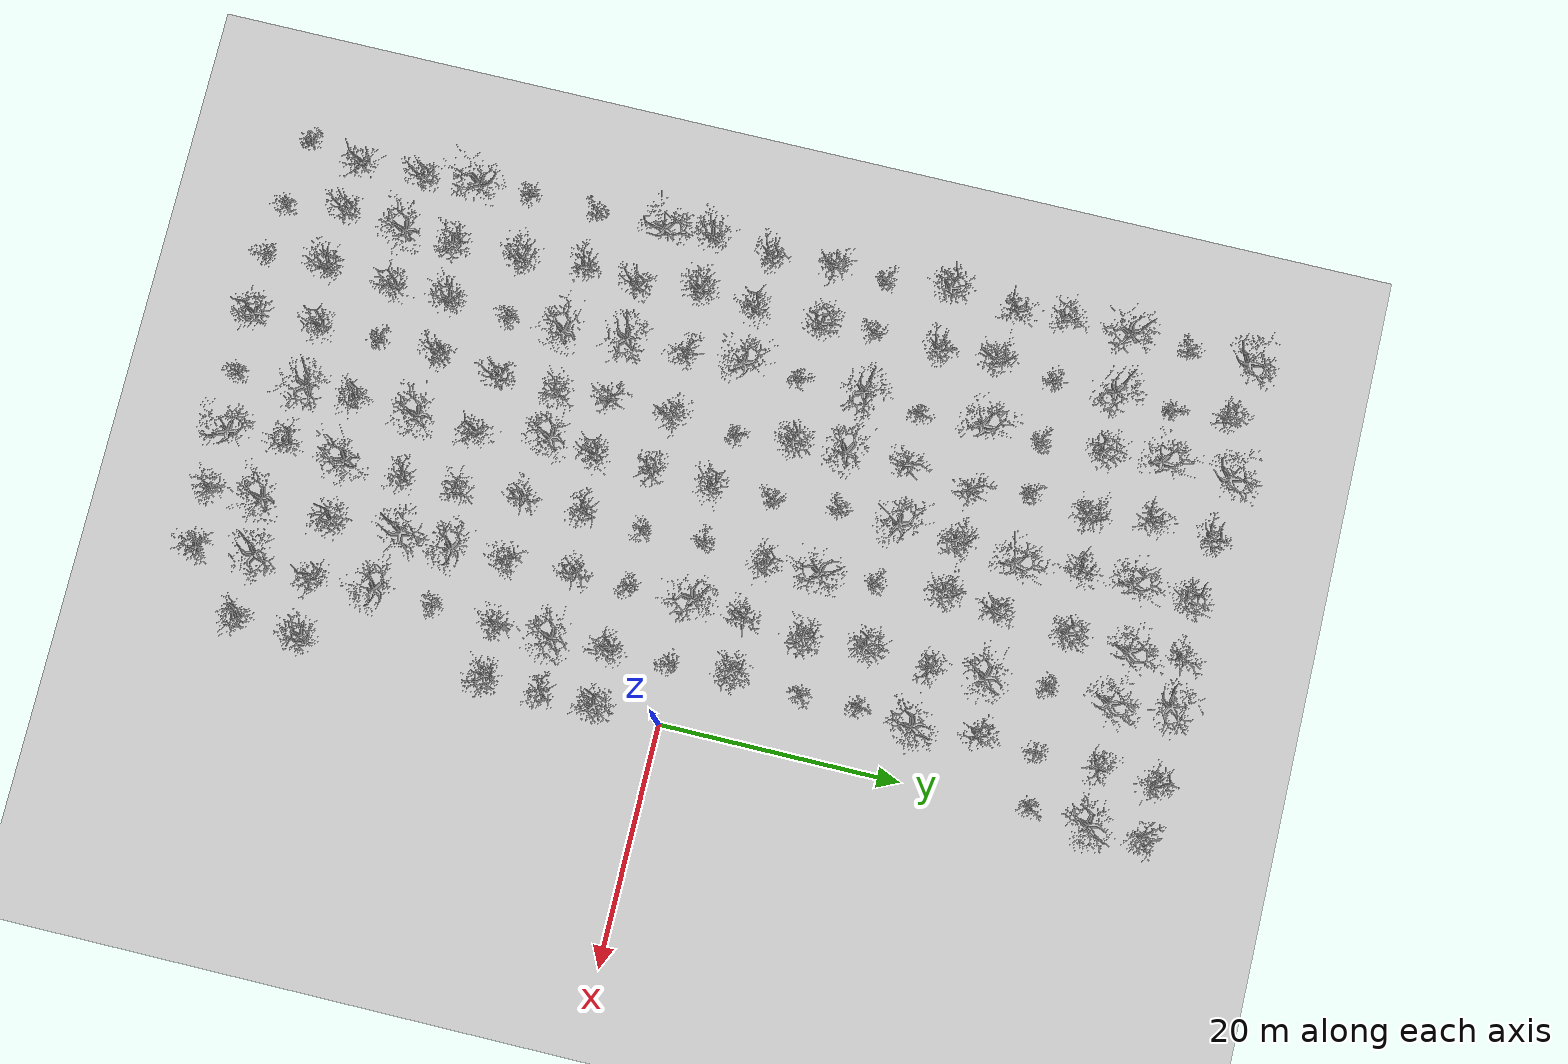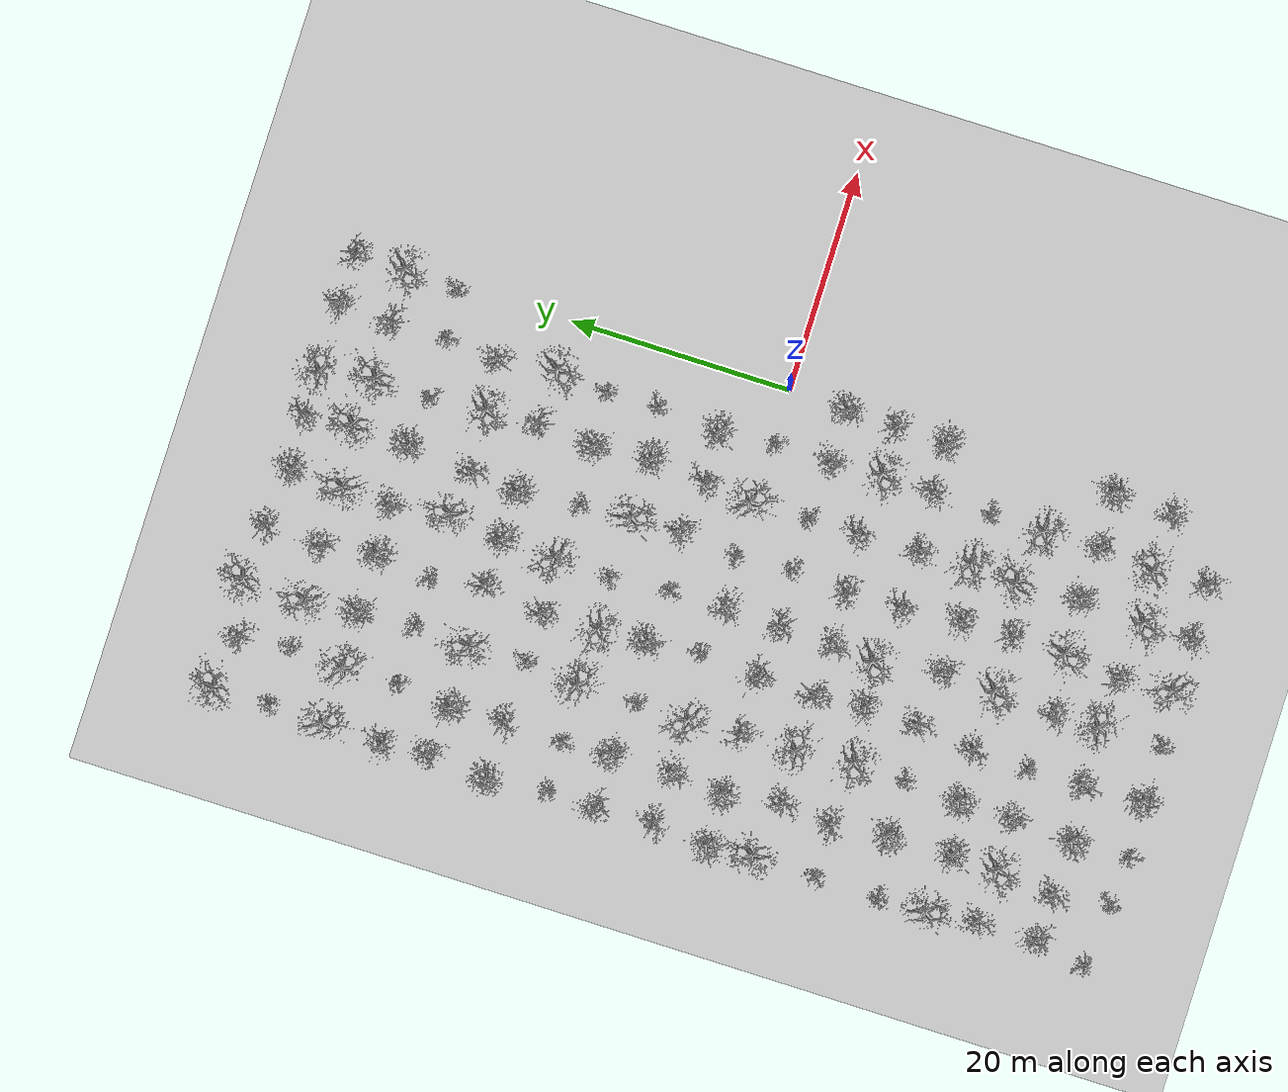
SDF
<sdf version="1.6">
 <world name="random_flat_forest">
  <include><uri>model://sun</uri></include>
  <model name="ground_plane">
   <static>true</static>
   <link name="link">
    <collision name="collision">
     <geometry><plane><normal>0 0 1</normal><size>100 100</size></plane></geometry>
    </collision>
    <visual name="visual">
     <geometry><plane><normal>0 0 1</normal><size>100 100</size></plane></geometry>
     <material>
      <script><uri>file://media/materials/scripts/gazebo.material</uri><name>Gazebo/Gray</name></script>
     </material>
    </visual>
   </link>
  </model>
  <include>
   <uri>model://random_tree_4</uri>
   <name>tree_0</name>
   <pose>-40.26 -39.60 0 0 0 6.20</pose>
   <scale>1.03 1.12 0.95</scale>
  </include>
  <include>
   <uri>model://random_tree_2</uri>
   <name>tree_1</name>
   <pose>-39.56 -34.91 0 0 0 2.53</pose>
   <scale>1.15 1.17 1.07</scale>
  </include>
  <include>
   <uri>model://random_tree_1</uri>
   <name>tree_2</name>
   <pose>-39.42 -29.65 0 0 0 5.63</pose>
   <scale>0.94 0.86 0.94</scale>
  </include>
  <include>
   <uri>model://random_tree_3</uri>
   <name>tree_3</name>
   <pose>-40.00 -25.00 0 0 0 4.07</pose>
   <scale>1.05 1.09 1.10</scale>
  </include>
  <include>
   <uri>model://random_tree_4</uri>
   <name>tree_4</name>
   <pose>-40.22 -20.73 0 0 0 3.93</pose>
   <scale>1.14 1.17 1.03</scale>
  </include>
  <include>
   <uri>model://random_tree_4</uri>
   <name>tree_5</name>
   <pose>-39.88 -14.86 0 0 0 1.59</pose>
   <scale>1.01 0.93 1.12</scale>
  </include>
  <include>
   <uri>model://random_tree_3</uri>
   <name>tree_6</name>
   <pose>-39.82 -9.19 0 0 0 0.88</pose>
   <scale>0.95 0.96 1.01</scale>
  </include>
  <include>
   <uri>model://random_tree_0</uri>
   <name>tree_7</name>
   <pose>-40.21 -5.08 0 0 0 0.79</pose>
   <scale>1.06 0.99 1.15</scale>
  </include>
  <include>
   <uri>model://random_tree_1</uri>
   <name>tree_8</name>
   <pose>-39.66 -0.11 0 0 0 4.91</pose>
   <scale>1.14 1.24 1.07</scale>
  </include>
  <include>
   <uri>model://random_tree_2</uri>
   <name>tree_9</name>
   <pose>-40.19 5.23 0 0 0 2.98</pose>
   <scale>0.92 0.89 1.15</scale>
  </include>
  <include>
   <uri>model://random_tree_4</uri>
   <name>tree_10</name>
   <pose>-39.77 9.55 0 0 0 0.28</pose>
   <scale>1.07 1.13 1.10</scale>
  </include>
  <include>
   <uri>model://random_tree_0</uri>
   <name>tree_11</name>
   <pose>-40.49 14.92 0 0 0 4.00</pose>
   <scale>0.94 0.99 1.04</scale>
  </include>
  <include>
   <uri>model://random_tree_2</uri>
   <name>tree_12</name>
   <pose>-40.05 20.74 0 0 0 2.21</pose>
   <scale>0.98 0.98 1.09</scale>
  </include>
  <include>
   <uri>model://random_tree_2</uri>
   <name>tree_13</name>
   <pose>-40.31 24.60 0 0 0 4.30</pose>
   <scale>1.04 1.12 0.93</scale>
  </include>
  <include>
   <uri>model://random_tree_3</uri>
   <name>tree_14</name>
   <pose>-40.16 30.14 0 0 0 4.40</pose>
   <scale>1.15 1.09 0.97</scale>
  </include>
  <include>
   <uri>model://random_tree_4</uri>
   <name>tree_15</name>
   <pose>-39.87 35.20 0 0 0 1.45</pose>
   <scale>1.20 1.19 1.04</scale>
  </include>
  <include>
   <uri>model://random_tree_3</uri>
   <name>tree_16</name>
   <pose>-40.06 40.10 0 0 0 0.04</pose>
   <scale>0.94 0.97 1.03</scale>
  </include>
  <include>
   <uri>model://random_tree_4</uri>
   <name>tree_17</name>
   <pose>-34.58 -40.25 0 0 0 4.76</pose>
   <scale>1.14 1.14 1.01</scale>
  </include>
  <include>
   <uri>model://random_tree_1</uri>
   <name>tree_18</name>
   <pose>-35.24 -35.19 0 0 0 5.52</pose>
   <scale>1.18 1.14 1.14</scale>
  </include>
  <include>
   <uri>model://random_tree_3</uri>
   <name>tree_19</name>
   <pose>-34.59 -29.89 0 0 0 3.06</pose>
   <scale>0.93 0.94 1.19</scale>
  </include>
  <include>
   <uri>model://random_tree_0</uri>
   <name>tree_20</name>
   <pose>-34.52 -25.85 0 0 0 3.23</pose>
   <scale>1.14 1.23 1.11</scale>
  </include>
  <include>
   <uri>model://random_tree_0</uri>
   <name>tree_21</name>
   <pose>-34.60 -19.95 0 0 0 0.23</pose>
   <scale>1.18 1.26 0.98</scale>
  </include>
  <include>
   <uri>model://random_tree_1</uri>
   <name>tree_22</name>
   <pose>-35.20 -14.80 0 0 0 4.58</pose>
   <scale>1.16 1.17 0.93</scale>
  </include>
  <include>
   <uri>model://random_tree_1</uri>
   <name>tree_23</name>
   <pose>-34.65 -10.28 0 0 0 5.40</pose>
   <scale>1.04 1.10 1.07</scale>
  </include>
  <include>
   <uri>model://random_tree_0</uri>
   <name>tree_24</name>
   <pose>-35.52 -5.01 0 0 0 0.20</pose>
   <scale>0.94 0.85 1.18</scale>
  </include>
  <include>
   <uri>model://random_tree_2</uri>
   <name>tree_25</name>
   <pose>-35.03 -0.17 0 0 0 1.33</pose>
   <scale>1.11 1.07 1.03</scale>
  </include>
  <include>
   <uri>model://random_tree_0</uri>
   <name>tree_26</name>
   <pose>-34.99 5.29 0 0 0 5.43</pose>
   <scale>0.99 0.93 1.13</scale>
  </include>
  <include>
   <uri>model://random_tree_4</uri>
   <name>tree_27</name>
   <pose>-35.36 9.72 0 0 0 1.97</pose>
   <scale>1.12 1.14 1.17</scale>
  </include>
  <include>
   <uri>model://random_tree_1</uri>
   <name>tree_28</name>
   <pose>-35.24 15.04 0 0 0 4.85</pose>
   <scale>0.95 1.03 1.16</scale>
  </include>
  <include>
   <uri>model://random_tree_0</uri>
   <name>tree_29</name>
   <pose>-35.53 19.93 0 0 0 2.02</pose>
   <scale>1.07 1.00 0.99</scale>
  </include>
  <include>
   <uri>model://random_tree_4</uri>
   <name>tree_30</name>
   <pose>-34.88 24.97 0 0 0 2.83</pose>
   <scale>0.95 0.96 1.17</scale>
  </include>
  <include>
   <uri>model://random_tree_3</uri>
   <name>tree_31</name>
   <pose>-35.08 30.00 0 0 0 4.88</pose>
   <scale>1.18 1.17 1.04</scale>
  </include>
  <include>
   <uri>model://random_tree_4</uri>
   <name>tree_32</name>
   <pose>-34.66 34.71 0 0 0 5.50</pose>
   <scale>1.02 1.09 0.94</scale>
  </include>
  <include>
   <uri>model://random_tree_1</uri>
   <name>tree_33</name>
   <pose>-35.03 39.42 0 0 0 0.40</pose>
   <scale>0.95 0.90 1.09</scale>
  </include>
  <include>
   <uri>model://random_tree_4</uri>
   <name>tree_34</name>
   <pose>-30.12 -40.57 0 0 0 2.49</pose>
   <scale>1.13 1.09 1.02</scale>
  </include>
  <include>
   <uri>model://random_tree_0</uri>
   <name>tree_35</name>
   <pose>-30.32 -35.39 0 0 0 0.85</pose>
   <scale>1.14 1.10 1.04</scale>
  </include>
  <include>
   <uri>model://random_tree_2</uri>
   <name>tree_36</name>
   <pose>-30.01 -29.60 0 0 0 1.71</pose>
   <scale>1.02 0.97 0.95</scale>
  </include>
  <include>
   <uri>model://random_tree_0</uri>
   <name>tree_37</name>
   <pose>-29.95 -24.90 0 0 0 0.74</pose>
   <scale>1.18 1.25 0.96</scale>
  </include>
  <include>
   <uri>model://random_tree_4</uri>
   <name>tree_38</name>
   <pose>-29.69 -19.94 0 0 0 4.19</pose>
   <scale>0.97 1.03 0.90</scale>
  </include>
  <include>
   <uri>model://random_tree_3</uri>
   <name>tree_39</name>
   <pose>-29.39 -15.16 0 0 0 2.68</pose>
   <scale>1.12 1.07 0.96</scale>
  </include>
  <include>
   <uri>model://random_tree_3</uri>
   <name>tree_40</name>
   <pose>-30.09 -10.02 0 0 0 5.56</pose>
   <scale>1.09 1.09 1.18</scale>
  </include>
  <include>
   <uri>model://random_tree_1</uri>
   <name>tree_41</name>
   <pose>-30.12 -5.05 0 0 0 3.68</pose>
   <scale>0.97 1.03 1.10</scale>
  </include>
  <include>
   <uri>model://random_tree_3</uri>
   <name>tree_42</name>
   <pose>-30.27 -0.22 0 0 0 1.69</pose>
   <scale>1.16 1.07 1.12</scale>
  </include>
  <include>
   <uri>model://random_tree_4</uri>
   <name>tree_43</name>
   <pose>-30.16 4.43 0 0 0 5.56</pose>
   <scale>1.00 1.02 0.96</scale>
  </include>
  <include>
   <uri>model://random_tree_3</uri>
   <name>tree_44</name>
   <pose>-30.31 9.96 0 0 0 5.16</pose>
   <scale>1.13 1.14 1.13</scale>
  </include>
  <include>
   <uri>model://random_tree_4</uri>
   <name>tree_45</name>
   <pose>-29.64 14.72 0 0 0 5.13</pose>
   <scale>1.08 1.12 0.91</scale>
  </include>
  <include>
   <uri>model://random_tree_3</uri>
   <name>tree_46</name>
   <pose>-29.85 20.00 0 0 0 1.25</pose>
   <scale>0.96 0.92 1.15</scale>
  </include>
  <include>
   <uri>model://random_tree_4</uri>
   <name>tree_47</name>
   <pose>-29.57 24.93 0 0 0 0.38</pose>
   <scale>1.06 1.06 0.94</scale>
  </include>
  <include>
   <uri>model://random_tree_0</uri>
   <name>tree_48</name>
   <pose>-29.94 30.05 0 0 0 4.71</pose>
   <scale>1.01 1.11 1.03</scale>
  </include>
  <include>
   <uri>model://random_tree_3</uri>
   <name>tree_49</name>
   <pose>-30.29 34.89 0 0 0 1.17</pose>
   <scale>1.06 1.00 1.01</scale>
  </include>
  <include>
   <uri>model://random_tree_3</uri>
   <name>tree_50</name>
   <pose>-30.29 40.53 0 0 0 0.17</pose>
   <scale>1.05 1.01 0.98</scale>
  </include>
  <include>
   <uri>model://random_tree_0</uri>
   <name>tree_51</name>
   <pose>-24.99 -40.32 0 0 0 5.30</pose>
   <scale>0.93 0.90 1.12</scale>
  </include>
  <include>
   <uri>model://random_tree_2</uri>
   <name>tree_52</name>
   <pose>-25.25 -34.63 0 0 0 1.36</pose>
   <scale>0.92 0.90 1.12</scale>
  </include>
  <include>
   <uri>model://random_tree_4</uri>
   <name>tree_53</name>
   <pose>-25.32 -29.86 0 0 0 0.19</pose>
   <scale>1.15 1.12 1.12</scale>
  </include>
  <include>
   <uri>model://random_tree_1</uri>
   <name>tree_54</name>
   <pose>-25.23 -24.82 0 0 0 5.20</pose>
   <scale>1.01 0.96 1.06</scale>
  </include>
  <include>
   <uri>model://random_tree_1</uri>
   <name>tree_55</name>
   <pose>-24.54 -19.50 0 0 0 5.79</pose>
   <scale>1.00 1.08 1.08</scale>
  </include>
  <include>
   <uri>model://random_tree_2</uri>
   <name>tree_56</name>
   <pose>-24.51 -14.72 0 0 0 4.07</pose>
   <scale>1.02 1.02 1.11</scale>
  </include>
  <include>
   <uri>model://random_tree_1</uri>
   <name>tree_57</name>
   <pose>-25.00 -10.14 0 0 0 3.10</pose>
   <scale>1.16 1.06 1.00</scale>
  </include>
  <include>
   <uri>model://random_tree_2</uri>
   <name>tree_58</name>
   <pose>-24.95 -4.94 0 0 0 3.30</pose>
   <scale>0.96 0.88 0.96</scale>
  </include>
  <include>
   <uri>model://random_tree_4</uri>
   <name>tree_59</name>
   <pose>-24.34 0.48 0 0 0 5.73</pose>
   <scale>1.20 1.21 1.05</scale>
  </include>
  <include>
   <uri>model://random_tree_0</uri>
   <name>tree_60</name>
   <pose>-24.87 5.21 0 0 0 4.14</pose>
   <scale>1.06 1.08 1.18</scale>
  </include>
  <include>
   <uri>model://random_tree_3</uri>
   <name>tree_61</name>
   <pose>-25.03 9.68 0 0 0 2.45</pose>
   <scale>1.12 1.03 0.95</scale>
  </include>
  <include>
   <uri>model://random_tree_1</uri>
   <name>tree_62</name>
   <pose>-25.28 14.74 0 0 0 2.74</pose>
   <scale>1.02 1.01 1.03</scale>
  </include>
  <include>
   <uri>model://random_tree_1</uri>
   <name>tree_63</name>
   <pose>-24.38 20.22 0 0 0 3.18</pose>
   <scale>1.19 1.17 1.13</scale>
  </include>
  <include>
   <uri>model://random_tree_4</uri>
   <name>tree_64</name>
   <pose>-25.18 25.01 0 0 0 6.27</pose>
   <scale>0.90 0.94 1.03</scale>
  </include>
  <include>
   <uri>model://random_tree_0</uri>
   <name>tree_65</name>
   <pose>-24.66 30.11 0 0 0 1.80</pose>
   <scale>1.02 0.97 0.99</scale>
  </include>
  <include>
   <uri>model://random_tree_2</uri>
   <name>tree_66</name>
   <pose>-25.55 35.27 0 0 0 2.12</pose>
   <scale>1.02 0.92 0.95</scale>
  </include>
  <include>
   <uri>model://random_tree_1</uri>
   <name>tree_67</name>
   <pose>-25.10 40.08 0 0 0 4.71</pose>
   <scale>1.00 1.06 0.93</scale>
  </include>
  <include>
   <uri>model://random_tree_4</uri>
   <name>tree_68</name>
   <pose>-20.03 -40.47 0 0 0 4.70</pose>
   <scale>1.01 0.91 1.06</scale>
  </include>
  <include>
   <uri>model://random_tree_3</uri>
   <name>tree_69</name>
   <pose>-20.15 -34.64 0 0 0 5.50</pose>
   <scale>1.05 1.12 1.15</scale>
  </include>
  <include>
   <uri>model://random_tree_2</uri>
   <name>tree_70</name>
   <pose>-19.88 -30.47 0 0 0 0.51</pose>
   <scale>0.98 0.89 1.14</scale>
  </include>
  <include>
   <uri>model://random_tree_3</uri>
   <name>tree_71</name>
   <pose>-19.79 -25.03 0 0 0 3.05</pose>
   <scale>1.11 1.15 1.16</scale>
  </include>
  <include>
   <uri>model://random_tree_2</uri>
   <name>tree_72</name>
   <pose>-19.69 -20.12 0 0 0 2.28</pose>
   <scale>1.15 1.11 1.01</scale>
  </include>
  <include>
   <uri>model://random_tree_3</uri>
   <name>tree_73</name>
   <pose>-20.53 -14.05 0 0 0 2.89</pose>
   <scale>1.15 1.11 1.17</scale>
  </include>
  <include>
   <uri>model://random_tree_2</uri>
   <name>tree_74</name>
   <pose>-20.09 -10.20 0 0 0 1.21</pose>
   <scale>1.02 1.04 1.16</scale>
  </include>
  <include>
   <uri>model://random_tree_1</uri>
   <name>tree_75</name>
   <pose>-19.97 -5.41 0 0 0 1.12</pose>
   <scale>0.90 0.90 0.94</scale>
  </include>
  <include>
   <uri>model://random_tree_2</uri>
   <name>tree_76</name>
   <pose>-19.79 -0.27 0 0 0 0.79</pose>
   <scale>1.11 1.02 1.12</scale>
  </include>
  <include>
   <uri>model://random_tree_4</uri>
   <name>tree_77</name>
   <pose>-19.91 4.77 0 0 0 1.88</pose>
   <scale>0.97 0.89 1.15</scale>
  </include>
  <include>
   <uri>model://random_tree_4</uri>
   <name>tree_78</name>
   <pose>-20.36 10.16 0 0 0 1.34</pose>
   <scale>1.14 1.15 0.95</scale>
  </include>
  <include>
   <uri>model://random_tree_3</uri>
   <name>tree_79</name>
   <pose>-20.22 15.19 0 0 0 1.82</pose>
   <scale>1.11 1.15 1.15</scale>
  </include>
  <include>
   <uri>model://random_tree_0</uri>
   <name>tree_80</name>
   <pose>-20.11 20.06 0 0 0 2.38</pose>
   <scale>1.08 1.16 1.19</scale>
  </include>
  <include>
   <uri>model://random_tree_3</uri>
   <name>tree_81</name>
   <pose>-19.31 25.03 0 0 0 1.02</pose>
   <scale>0.92 0.88 1.14</scale>
  </include>
  <include>
   <uri>model://random_tree_2</uri>
   <name>tree_82</name>
   <pose>-20.23 30.51 0 0 0 1.69</pose>
   <scale>0.98 1.00 1.07</scale>
  </include>
  <include>
   <uri>model://random_tree_3</uri>
   <name>tree_83</name>
   <pose>-19.93 34.67 0 0 0 0.96</pose>
   <scale>0.98 1.07 1.16</scale>
  </include>
  <include>
   <uri>model://random_tree_0</uri>
   <name>tree_84</name>
   <pose>-19.74 39.36 0 0 0 3.46</pose>
   <scale>1.00 1.00 1.01</scale>
  </include>
  <include>
   <uri>model://random_tree_3</uri>
   <name>tree_85</name>
   <pose>-15.00 -39.88 0 0 0 1.44</pose>
   <scale>1.18 1.12 0.97</scale>
  </include>
  <include>
   <uri>model://random_tree_2</uri>
   <name>tree_86</name>
   <pose>-15.18 -35.08 0 0 0 6.02</pose>
   <scale>1.18 1.12 1.13</scale>
  </include>
  <include>
   <uri>model://random_tree_3</uri>
   <name>tree_87</name>
   <pose>-14.83 -29.87 0 0 0 3.49</pose>
   <scale>0.93 0.87 1.02</scale>
  </include>
  <include>
   <uri>model://random_tree_1</uri>
   <name>tree_88</name>
   <pose>-14.67 -25.07 0 0 0 4.26</pose>
   <scale>1.00 1.00 1.18</scale>
  </include>
  <include>
   <uri>model://random_tree_2</uri>
   <name>tree_89</name>
   <pose>-14.77 -20.56 0 0 0 4.11</pose>
   <scale>1.04 1.10 0.91</scale>
  </include>
  <include>
   <uri>model://random_tree_1</uri>
   <name>tree_90</name>
   <pose>-15.31 -14.99 0 0 0 2.04</pose>
   <scale>1.06 1.13 1.02</scale>
  </include>
  <include>
   <uri>model://random_tree_1</uri>
   <name>tree_91</name>
   <pose>-15.42 -10.10 0 0 0 4.26</pose>
   <scale>1.19 1.31 1.09</scale>
  </include>
  <include>
   <uri>model://random_tree_4</uri>
   <name>tree_92</name>
   <pose>-15.04 -4.97 0 0 0 3.51</pose>
   <scale>1.07 1.09 0.94</scale>
  </include>
  <include>
   <uri>model://random_tree_4</uri>
   <name>tree_93</name>
   <pose>-15.18 0.13 0 0 0 0.82</pose>
   <scale>1.13 1.14 0.94</scale>
  </include>
  <include>
   <uri>model://random_tree_2</uri>
   <name>tree_94</name>
   <pose>-14.49 5.36 0 0 0 0.17</pose>
   <scale>1.02 1.00 1.04</scale>
  </include>
  <include>
   <uri>model://random_tree_3</uri>
   <name>tree_95</name>
   <pose>-14.88 9.85 0 0 0 4.10</pose>
   <scale>1.13 1.07 1.07</scale>
  </include>
  <include>
   <uri>model://random_tree_4</uri>
   <name>tree_96</name>
   <pose>-15.08 14.35 0 0 0 0.37</pose>
   <scale>1.01 0.93 1.16</scale>
  </include>
  <include>
   <uri>model://random_tree_0</uri>
   <name>tree_97</name>
   <pose>-15.81 20.03 0 0 0 2.13</pose>
   <scale>0.92 0.83 0.95</scale>
  </include>
  <include>
   <uri>model://random_tree_1</uri>
   <name>tree_98</name>
   <pose>-15.20 24.35 0 0 0 5.79</pose>
   <scale>1.00 0.95 1.17</scale>
  </include>
  <include>
   <uri>model://random_tree_0</uri>
   <name>tree_99</name>
   <pose>-14.68 30.34 0 0 0 4.24</pose>
   <scale>0.93 0.87 0.90</scale>
  </include>
  <include>
   <uri>model://random_tree_3</uri>
   <name>tree_100</name>
   <pose>-14.48 35.50 0 0 0 0.61</pose>
   <scale>1.08 1.09 1.09</scale>
  </include>
  <include>
   <uri>model://random_tree_1</uri>
   <name>tree_101</name>
   <pose>-14.96 39.89 0 0 0 2.02</pose>
   <scale>1.02 1.07 1.10</scale>
  </include>
  <include>
   <uri>model://random_tree_2</uri>
   <name>tree_102</name>
   <pose>-10.17 -40.24 0 0 0 4.80</pose>
   <scale>0.99 1.07 1.16</scale>
  </include>
  <include>
   <uri>model://random_tree_3</uri>
   <name>tree_103</name>
   <pose>-10.17 -35.64 0 0 0 3.03</pose>
   <scale>1.17 1.27 1.08</scale>
  </include>
  <include>
   <uri>model://random_tree_0</uri>
   <name>tree_104</name>
   <pose>-9.79 -29.81 0 0 0 4.83</pose>
   <scale>1.03 1.02 1.04</scale>
  </include>
  <include>
   <uri>model://random_tree_3</uri>
   <name>tree_105</name>
   <pose>-10.22 -24.04 0 0 0 0.17</pose>
   <scale>1.18 1.24 0.93</scale>
  </include>
  <include>
   <uri>model://random_tree_3</uri>
   <name>tree_106</name>
   <pose>-9.76 -19.71 0 0 0 2.35</pose>
   <scale>1.12 1.22 1.18</scale>
  </include>
  <include>
   <uri>model://random_tree_2</uri>
   <name>tree_107</name>
   <pose>-9.93 -15.28 0 0 0 5.25</pose>
   <scale>1.18 1.06 1.17</scale>
  </include>
  <include>
   <uri>model://random_tree_1</uri>
   <name>tree_108</name>
   <pose>-10.31 -9.43 0 0 0 2.00</pose>
   <scale>1.14 1.14 1.16</scale>
  </include>
  <include>
   <uri>model://random_tree_4</uri>
   <name>tree_109</name>
   <pose>-10.30 -4.92 0 0 0 3.31</pose>
   <scale>1.20 1.30 1.15</scale>
  </include>
  <include>
   <uri>model://random_tree_3</uri>
   <name>tree_110</name>
   <pose>-10.48 0.34 0 0 0 4.57</pose>
   <scale>0.91 0.95 1.19</scale>
  </include>
  <include>
   <uri>model://random_tree_1</uri>
   <name>tree_111</name>
   <pose>-10.00 4.61 0 0 0 2.21</pose>
   <scale>0.97 0.96 1.05</scale>
  </include>
  <include>
   <uri>model://random_tree_0</uri>
   <name>tree_112</name>
   <pose>-9.47 9.68 0 0 0 2.92</pose>
   <scale>1.06 0.98 0.97</scale>
  </include>
  <include>
   <uri>model://random_tree_0</uri>
   <name>tree_113</name>
   <pose>-9.90 14.83 0 0 0 4.64</pose>
   <scale>1.07 1.13 0.97</scale>
  </include>
  <include>
   <uri>model://random_tree_1</uri>
   <name>tree_114</name>
   <pose>-9.42 20.16 0 0 0 0.64</pose>
   <scale>1.19 1.23 1.00</scale>
  </include>
  <include>
   <uri>model://random_tree_3</uri>
   <name>tree_115</name>
   <pose>-9.70 24.79 0 0 0 2.88</pose>
   <scale>0.97 0.91 0.93</scale>
  </include>
  <include>
   <uri>model://random_tree_4</uri>
   <name>tree_116</name>
   <pose>-10.26 29.84 0 0 0 3.20</pose>
   <scale>0.93 0.92 1.09</scale>
  </include>
  <include>
   <uri>model://random_tree_3</uri>
   <name>tree_117</name>
   <pose>-10.05 34.83 0 0 0 0.44</pose>
   <scale>1.09 1.17 0.99</scale>
  </include>
  <include>
   <uri>model://random_tree_3</uri>
   <name>tree_118</name>
   <pose>-10.95 39.73 0 0 0 5.60</pose>
   <scale>0.93 0.94 0.92</scale>
  </include>
  <include>
   <uri>model://random_tree_2</uri>
   <name>tree_119</name>
   <pose>-5.09 -40.01 0 0 0 5.54</pose>
   <scale>1.05 1.04 0.92</scale>
  </include>
  <include>
   <uri>model://random_tree_3</uri>
   <name>tree_120</name>
   <pose>-5.69 -35.12 0 0 0 6.04</pose>
   <scale>0.94 1.02 1.19</scale>
  </include>
  <include>
   <uri>model://random_tree_2</uri>
   <name>tree_121</name>
   <pose>-5.15 -30.06 0 0 0 2.94</pose>
   <scale>1.11 1.11 0.97</scale>
  </include>
  <include>
   <uri>model://random_tree_3</uri>
   <name>tree_122</name>
   <pose>-5.14 -24.91 0 0 0 2.30</pose>
   <scale>1.17 1.17 1.17</scale>
  </include>
  <include>
   <uri>model://random_tree_4</uri>
   <name>tree_123</name>
   <pose>-5.20 -20.07 0 0 0 4.05</pose>
   <scale>1.01 1.03 1.02</scale>
  </include>
  <include>
   <uri>model://random_tree_2</uri>
   <name>tree_124</name>
   <pose>-4.70 -14.82 0 0 0 4.77</pose>
   <scale>1.20 1.26 1.17</scale>
  </include>
  <include>
   <uri>model://random_tree_3</uri>
   <name>tree_125</name>
   <pose>-4.60 -9.98 0 0 0 2.94</pose>
   <scale>1.07 1.06 0.92</scale>
  </include>
  <include>
   <uri>model://random_tree_2</uri>
   <name>tree_126</name>
   <pose>-5.09 -5.24 0 0 0 1.86</pose>
   <scale>1.01 1.04 0.98</scale>
  </include>
  <include>
   <uri>model://random_tree_4</uri>
   <name>tree_127</name>
   <pose>-4.95 -0.21 0 0 0 2.83</pose>
   <scale>1.13 1.06 1.06</scale>
  </include>
  <include>
   <uri>model://random_tree_0</uri>
   <name>tree_128</name>
   <pose>-5.47 4.75 0 0 0 3.16</pose>
   <scale>1.01 1.02 1.12</scale>
  </include>
  <include>
   <uri>model://random_tree_4</uri>
   <name>tree_129</name>
   <pose>-4.96 10.51 0 0 0 4.49</pose>
   <scale>1.14 1.21 0.97</scale>
  </include>
  <include>
   <uri>model://random_tree_4</uri>
   <name>tree_130</name>
   <pose>-5.10 15.15 0 0 0 5.33</pose>
   <scale>1.13 1.16 0.91</scale>
  </include>
  <include>
   <uri>model://random_tree_3</uri>
   <name>tree_131</name>
   <pose>-4.49 19.91 0 0 0 3.30</pose>
   <scale>0.90 0.82 0.92</scale>
  </include>
  <include>
   <uri>model://random_tree_1</uri>
   <name>tree_132</name>
   <pose>-5.11 25.24 0 0 0 0.01</pose>
   <scale>1.07 1.17 0.94</scale>
  </include>
  <include>
   <uri>model://random_tree_4</uri>
   <name>tree_133</name>
   <pose>-4.82 30.06 0 0 0 2.44</pose>
   <scale>1.16 1.20 1.09</scale>
  </include>
  <include>
   <uri>model://random_tree_1</uri>
   <name>tree_134</name>
   <pose>-4.86 35.14 0 0 0 0.74</pose>
   <scale>1.10 1.05 1.01</scale>
  </include>
  <include>
   <uri>model://random_tree_2</uri>
   <name>tree_135</name>
   <pose>-4.43 39.89 0 0 0 0.00</pose>
   <scale>1.19 1.25 0.93</scale>
  </include>
  <include>
   <uri>model://random_tree_2</uri>
   <name>tree_137</name>
   <pose>-0.24 -35.13 0 0 0 0.60</pose>
   <scale>1.04 0.96 0.92</scale>
  </include>
  <include>
   <uri>model://random_tree_0</uri>
   <name>tree_138</name>
   <pose>-0.14 -29.71 0 0 0 0.57</pose>
   <scale>1.14 1.25 1.13</scale>
  </include>
  <include>
   <uri>model://random_tree_0</uri>
   <name>tree_141</name>
   <pose>-0.46 -14.60 0 0 0 2.90</pose>
   <scale>1.09 1.08 0.97</scale>
  </include>
  <include>
   <uri>model://random_tree_1</uri>
   <name>tree_142</name>
   <pose>-0.31 -9.91 0 0 0 4.20</pose>
   <scale>1.07 1.08 1.10</scale>
  </include>
  <include>
   <uri>model://random_tree_0</uri>
   <name>tree_143</name>
   <pose>-0.16 -5.43 0 0 0 4.45</pose>
   <scale>1.15 1.14 0.96</scale>
  </include>
  <include>
   <uri>model://random_tree_4</uri>
   <name>tree_150</name>
   <pose>-0.46 30.36 0 0 0 4.90</pose>
   <scale>1.14 1.20 0.98</scale>
  </include>
  <include>
   <uri>model://random_tree_3</uri>
   <name>tree_151</name>
   <pose>-0.10 35.31 0 0 0 3.02</pose>
   <scale>0.96 1.02 1.15</scale>
  </include>
  <include>
   <uri>model://random_tree_1</uri>
   <name>tree_152</name>
   <pose>-0.12 39.68 0 0 0 3.72</pose>
   <scale>0.98 0.96 1.03</scale>
  </include>
 </world>
</sdf>
